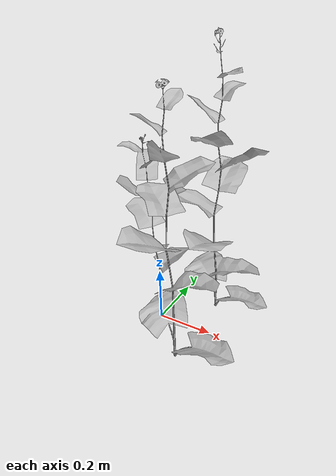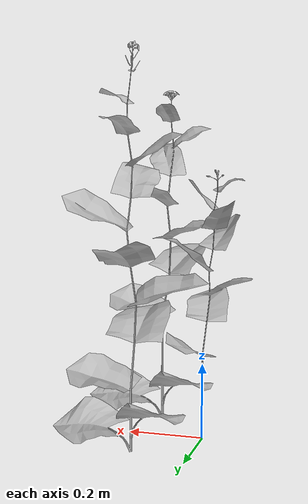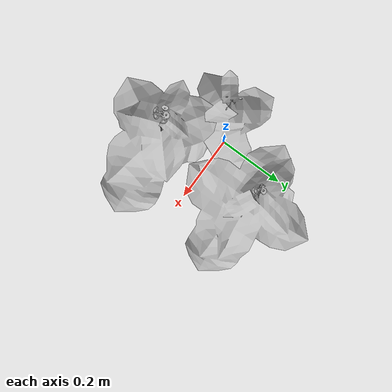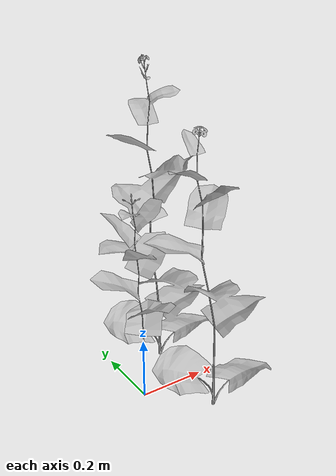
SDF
<?xml version="1.0" ?>
<sdf version="1.6">
  <model name="weed1_1">
    <static>1</static>
    <link name="link">

      <visual name="branch">
        <geometry>
          <mesh>
            <uri>model://weed1/meshes/GC02_1.obj</uri>
          </mesh>
        </geometry>
        <cast_shadows>1</cast_shadows>
      </visual>
    </link>
    <link name="weed1_2">

      <visual name="weed1_2">
        <geometry>
          <mesh>
            <uri>model://weed1/meshes/GC02_2.obj</uri>
          </mesh>
        </geometry>
        <cast_shadows>1</cast_shadows>
      </visual>
        <pose>0.15 -0.15 0 0 0 0</pose>
    </link>
    <link name="weed1_3">

      <visual name="weed1_3">
        <geometry>
          <mesh>
            <uri>model://weed1/meshes/GC02_3.obj</uri>
          </mesh>
        </geometry>
        <cast_shadows>1</cast_shadows>
      </visual>
        <pose>0.15 0.15 0 0 0 0</pose>
    </link>
  </model>
</sdf>
